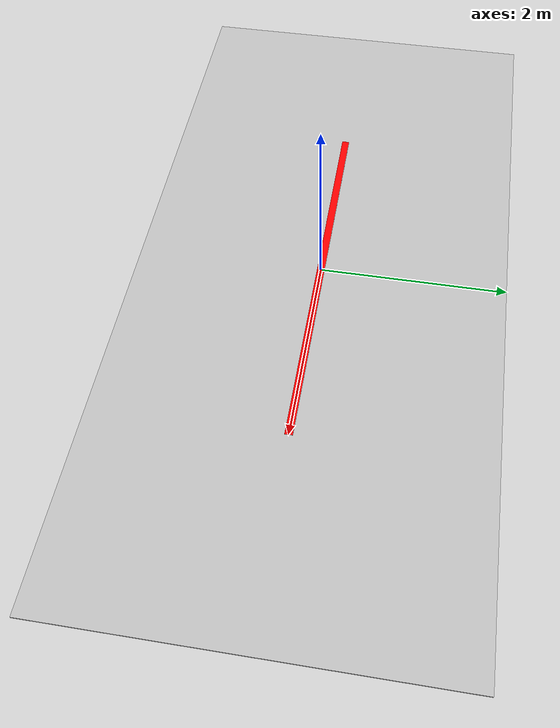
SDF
<?xml version="1.0"?>
<sdf version="1.6">
  <world name="default">

    <!-- Gazebo systems -->
    <plugin filename="gz-sim-physics-system"
            name="gz::sim::systems::Physics"/>
    <plugin filename="gz-sim-user-commands-system"
            name="gz::sim::systems::UserCommands"/>
    <plugin filename="gz-sim-scene-broadcaster-system"
            name="gz::sim::systems::SceneBroadcaster"/>
    <plugin filename="gz-sim-sensors-system"
            name="gz::sim::systems::Sensors">
      <render_engine>ogre2</render_engine>
    </plugin>
    <plugin filename="gz-sim-imu-system"
            name="gz::sim::systems::Imu"/>

    <!-- Lighting -->
    <include>
      <uri>https://fuel.gazebosim.org/1.0/OpenRobotics/models/Sun</uri>
    </include>

    <scene>
      <shadows>false</shadows>
      <ambient>0.6 0.6 0.6 1</ambient>
      <background>0.8 0.8 0.8 1</background>
    </scene>

    <!-- Large light-gray floor -->
    <model name="line_following_floor">
      <static>true</static>
      <link name="floor_link">
        <collision name="floor_collision">
          <geometry>
            <box>
              <size>8 4 0.02</size>
            </box>
          </geometry>
        </collision>
        <visual name="floor_visual">
          <geometry>
            <box>
              <size>8 4 0.02</size>
            </box>
          </geometry>
          <material>
            <ambient>0.75 0.75 0.75 1</ambient>
            <diffuse>0.75 0.75 0.75 1</diffuse>
          </material>
        </visual>
      </link>
      <pose>0 0 -0.01 0 0 0</pose>
    </model>

    <!-- Red lane: 4 m long, 0.08 m wide -->
    <model name="red_lane">
      <static>true</static>
      <link name="lane_link">
        <visual name="lane_visual">
          <geometry>
            <box>
              <size>4.0 0.08 0.002</size>
            </box>
          </geometry>
          <material>
            <ambient>1 0 0 1</ambient>
            <diffuse>1 0 0 1</diffuse>
            <emissive>0.15 0 0 1</emissive>
          </material>
        </visual>
      </link>
      <pose>0 0 0.001 0 0 0</pose>
    </model>

    <!-- Gazebo physics -->
    <physics type="ode">
      <real_time_update_rate>1000.0</real_time_update_rate>
      <max_step_size>0.001</max_step_size>
      <real_time_factor>1</real_time_factor>
      <ode>
        <solver>
          <type>quick</type>
          <iters>150</iters>
          <precon_iters>0</precon_iters>
          <sor>1.4</sor>
          <use_dynamic_moi_rescaling>1</use_dynamic_moi_rescaling>
        </solver>
        <constraints>
          <cfm>0.00001</cfm>
          <erp>0.2</erp>
          <contact_max_correcting_vel>2000</contact_max_correcting_vel>
          <contact_surface_layer>0.01</contact_surface_layer>
        </constraints>
      </ode>
    </physics>

    <!-- Initial overhead view -->
    <gui fullscreen="0">
      <camera name="user_camera">
        <pose>0 0 8 0 1.5708 0</pose>
        <view_controller>orbit</view_controller>
        <projection_type>perspective</projection_type>
      </camera>
    </gui>

  </world>
</sdf>
